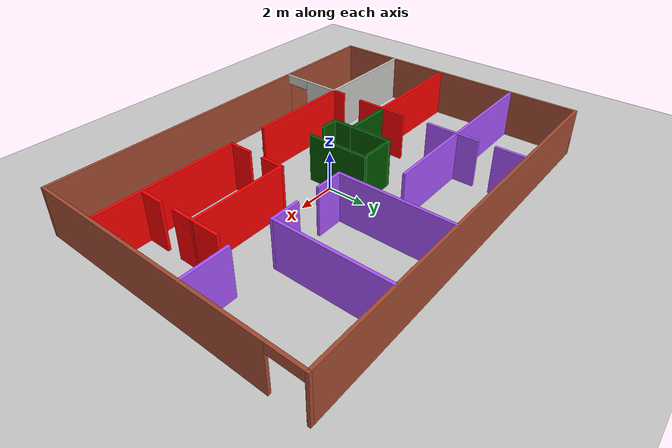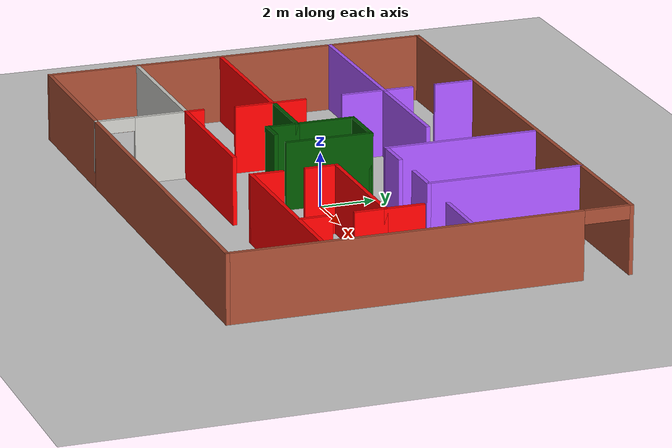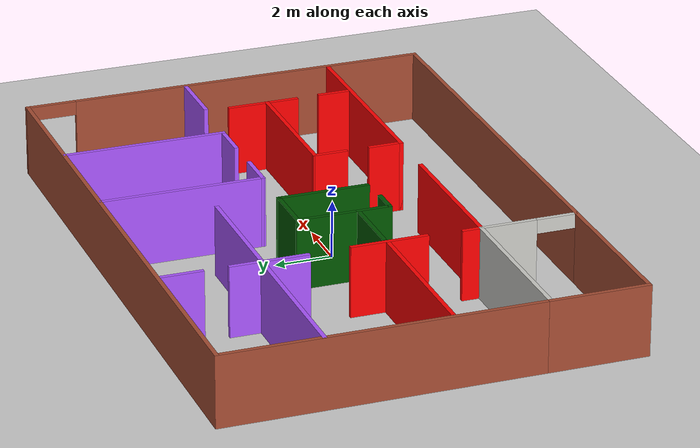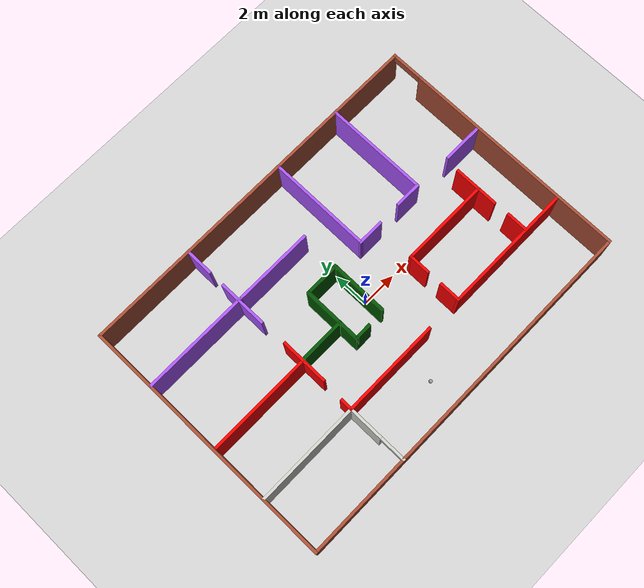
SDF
<sdf version="1.6">
 <world name="default">
  <model name="ground_plane">
   <static>1</static>
   <link name="link">
    <collision name="collision">
     <geometry><plane><normal>0 0 1</normal><size>100 100</size></plane></geometry>
     <surface><friction><ode><mu>100</mu><mu2>50</mu2></ode></friction></surface>
    </collision>
    <visual name="visual">
     <cast_shadows>0</cast_shadows>
     <geometry><plane><normal>0 0 1</normal><size>100 100</size></plane></geometry>
     <material>
      <script><uri>file://media/materials/scripts/gazebo.material</uri><name>Gazebo/Grey</name></script>
     </material>
    </visual>
   </link>
  </model>
  <model name="myhome">
   <pose>-0.1492 0.36301 0 0 -0 0</pose>
   <link name="Wall_0">
    <collision name="Wall_0_Collision">
     <geometry><box><size>11 0.15 2.5</size></box></geometry>
     <pose>0 0 1.25 0 -0 0</pose>
    </collision>
    <visual name="Wall_0_Visual">
     <pose>0 0 1.25 0 -0 0</pose>
     <geometry><box><size>11 0.15 2.5</size></box></geometry>
     <material>
      <script><uri>file://media/materials/scripts/gazebo.material</uri><name>Gazebo/Bricks</name></script>
      <ambient>1 1 1 1</ambient>
     </material>
     <meta><layer>0</layer></meta>
    </visual>
    <pose>-10.175 1.75 0 0 -0 1.5708</pose>
   </link>
   <link name="Wall_1">
    <collision name="Wall_1_Collision">
     <geometry><box><size>20.5 0.15 2.5</size></box></geometry>
     <pose>0 0 1.25 0 -0 0</pose>
    </collision>
    <visual name="Wall_1_Visual">
     <pose>0 0 1.25 0 -0 0</pose>
     <geometry><box><size>20.5 0.15 2.5</size></box></geometry>
     <material>
      <script><uri>file://media/materials/scripts/gazebo.material</uri><name>Gazebo/Bricks</name></script>
      <ambient>1 1 1 1</ambient>
     </material>
     <meta><layer>0</layer></meta>
    </visual>
    <pose>0 7.175 0 0 -0 0</pose>
   </link>
   <link name="Wall_12">
    <collision name="Wall_12_Collision">
     <geometry><box><size>5.75 0.15 2.5</size></box></geometry>
     <pose>0 0 1.25 0 -0 0</pose>
    </collision>
    <visual name="Wall_12_Visual">
     <pose>0 0 1.25 0 -0 0</pose>
     <geometry><box><size>5.75 0.15 2.5</size></box></geometry>
     <material>
      <script><uri>file://media/materials/scripts/gazebo.material</uri><name>Gazebo/Grey</name></script>
      <ambient>0.666667 0.333333 1 1</ambient>
     </material>
     <meta><layer>0</layer></meta>
    </visual>
    <pose>5.80825 4.32699 0 0 0 -1.5708</pose>
   </link>
   <link name="Wall_18">
    <collision name="Wall_18_Collision">
     <geometry><box><size>5.5 0.15 2.5</size></box></geometry>
     <pose>0 0 1.25 0 -0 0</pose>
    </collision>
    <visual name="Wall_18_Visual">
     <pose>0 0 1.25 0 -0 0</pose>
     <geometry><box><size>5.5 0.15 2.5</size></box></geometry>
     <material>
      <script><uri>file://media/materials/scripts/gazebo.material</uri><name>Gazebo/Grey</name></script>
      <ambient>1 0 0 1</ambient>
     </material>
     <meta><layer>0</layer></meta>
    </visual>
    <pose>-1.75 -3.825 0 0 -0 0</pose>
   </link>
   <link name="Wall_2">
    <pose>10.175 0 0 0 0 -1.5708</pose>
    <visual name="Wall_2_Visual_0">
     <pose>-7.17641 0 1.25 0 -0 0</pose>
     <geometry><box><size>0.147184 0.15 2.5</size></box></geometry>
     <material>
      <script><uri>file://media/materials/scripts/gazebo.material</uri><name>Gazebo/Bricks</name></script>
      <ambient>1 1 1 1</ambient>
     </material>
     <meta><layer>0</layer></meta>
    </visual>
    <collision name="Wall_2_Collision_0">
     <geometry><box><size>0.147184 0.15 2.5</size></box></geometry>
     <pose>-7.17641 0 1.25 0 -0 0</pose>
    </collision>
    <visual name="Wall_2_Visual_1">
     <pose>0.893682 0 1.25 0 -0 0</pose>
     <geometry><box><size>12.7126 0.15 2.5</size></box></geometry>
     <material>
      <script><uri>file://media/materials/scripts/gazebo.material</uri><name>Gazebo/Bricks</name></script>
      <ambient>1 1 1 1</ambient>
     </material>
     <meta><layer>0</layer></meta>
    </visual>
    <collision name="Wall_2_Collision_1">
     <geometry><box><size>12.7126 0.15 2.5</size></box></geometry>
     <pose>0.893682 0 1.25 0 -0 0</pose>
    </collision>
    <visual name="Wall_2_Visual_2">
     <pose>-6.28273 0 2.25 0 -0 0</pose>
     <geometry><box><size>1.64018 0.15 0.5</size></box></geometry>
     <material>
      <script><uri>file://media/materials/scripts/gazebo.material</uri><name>Gazebo/Bricks</name></script>
      <ambient>1 1 1 1</ambient>
     </material>
     <meta><layer>0</layer></meta>
    </visual>
    <collision name="Wall_2_Collision_2">
     <geometry><box><size>1.64018 0.15 0.5</size></box></geometry>
     <pose>-6.28273 0 2.25 0 -0 0</pose>
    </collision>
   </link>
   <link name="Wall_20">
    <collision name="Wall_20_Collision">
     <geometry><box><size>7.25 0.15 2.5</size></box></geometry>
     <pose>0 0 1.25 0 -0 0</pose>
    </collision>
    <visual name="Wall_20_Visual">
     <pose>0 0 1.25 0 -0 0</pose>
     <geometry><box><size>7.25 0.15 2.5</size></box></geometry>
     <material>
      <script><uri>file://media/materials/scripts/gazebo.material</uri><name>Gazebo/Grey</name></script>
      <ambient>1 0 0 1</ambient>
     </material>
     <meta><layer>0</layer></meta>
    </visual>
    <pose>6.46692 -3.86004 0 0 -0 0</pose>
   </link>
   <link name="Wall_22">
    <collision name="Wall_22_Collision">
     <geometry><box><size>2.249 0.15 2.5</size></box></geometry>
     <pose>0 0 1.25 0 -0 0</pose>
    </collision>
    <visual name="Wall_22_Visual">
     <pose>0 0 1.25 0 -0 0</pose>
     <geometry><box><size>2.249 0.15 2.5</size></box></geometry>
     <material>
      <script><uri>file://media/materials/scripts/gazebo.material</uri><name>Gazebo/Grey</name></script>
      <ambient>0.666667 0.333333 1 1</ambient>
     </material>
     <meta><layer>0</layer></meta>
    </visual>
    <pose>9.00955 1.43713 0 0 -0 0</pose>
   </link>
   <link name="Wall_3">
    <collision name="Wall_3_Collision">
     <geometry><box><size>14.75 0.15 2.5</size></box></geometry>
     <pose>0 0 1.25 0 -0 0</pose>
    </collision>
    <visual name="Wall_3_Visual">
     <pose>0 0 1.25 0 -0 0</pose>
     <geometry><box><size>14.75 0.15 2.5</size></box></geometry>
     <material>
      <script><uri>file://media/materials/scripts/gazebo.material</uri><name>Gazebo/Bricks</name></script>
      <ambient>1 1 1 1</ambient>
     </material>
     <meta><layer>0</layer></meta>
    </visual>
    <pose>2.875 -7.175 0 0 -0 3.14159</pose>
   </link>
   <link name="Wall_30">
    <collision name="Wall_30_Collision">
     <geometry><box><size>5.75 0.15 2.5</size></box></geometry>
     <pose>0 0 1.25 0 -0 0</pose>
    </collision>
    <visual name="Wall_30_Visual">
     <pose>0 0 1.25 0 -0 0</pose>
     <geometry><box><size>5.75 0.15 2.5</size></box></geometry>
     <material>
      <script><uri>file://media/materials/scripts/gazebo.material</uri><name>Gazebo/Grey</name></script>
      <ambient>1 0 0 1</ambient>
     </material>
     <meta><layer>0</layer></meta>
    </visual>
    <pose>-7.21309 -0.598629 0 0 -0 0</pose>
   </link>
   <link name="Wall_32">
    <collision name="Wall_32_Collision">
     <geometry><box><size>6 0.15 2.5</size></box></geometry>
     <pose>0 0 1.25 0 -0 0</pose>
    </collision>
    <visual name="Wall_32_Visual">
     <pose>0 0 1.25 0 -0 0</pose>
     <geometry><box><size>6 0.15 2.5</size></box></geometry>
     <material>
      <script><uri>file://media/materials/scripts/gazebo.material</uri><name>Gazebo/Grey</name></script>
      <ambient>0.666667 0.333333 1 1</ambient>
     </material>
     <meta><layer>0</layer></meta>
    </visual>
    <pose>-7.22687 3.68053 0 0 -0 0</pose>
   </link>
   <link name="Wall_34">
    <collision name="Wall_34_Collision">
     <geometry><box><size>2.75 0.15 2.5</size></box></geometry>
     <pose>0 0 1.25 0 -0 0</pose>
    </collision>
    <visual name="Wall_34_Visual">
     <pose>0 0 1.25 0 -0 0</pose>
     <geometry><box><size>2.75 0.15 2.5</size></box></geometry>
     <material>
      <script><uri>file://media/materials/scripts/gazebo.material</uri><name>Gazebo/Grey</name></script>
      <ambient>0.666667 0.333333 1 1</ambient>
     </material>
     <meta><layer>0</layer></meta>
    </visual>
    <pose>-4.39439 3.43427 0 0 0 -1.5708</pose>
   </link>
   <link name="Wall_36">
    <collision name="Wall_36_Collision">
     <geometry><box><size>2.7 0.15 2.5</size></box></geometry>
     <pose>0 0 1.25 0 -0 0</pose>
    </collision>
    <visual name="Wall_36_Visual">
     <pose>0 0 1.25 0 -0 0</pose>
     <geometry><box><size>2.7 0.15 2.5</size></box></geometry>
     <material>
      <script><uri>file://media/materials/scripts/gazebo.material</uri><name>Gazebo/Grey</name></script>
      <ambient>1 0 0 1</ambient>
     </material>
     <meta><layer>0</layer></meta>
    </visual>
    <pose>-4.34609 -0.670837 0 0 0 -1.5708</pose>
   </link>
   <link name="Wall_38">
    <collision name="Wall_38_Collision">
     <geometry><box><size>5.75 0.15 2.5</size></box></geometry>
     <pose>0 0 1.25 0 -0 0</pose>
    </collision>
    <visual name="Wall_38_Visual">
     <pose>0 0 1.25 0 -0 0</pose>
     <geometry><box><size>5.75 0.15 2.5</size></box></geometry>
     <material>
      <script><uri>file://media/materials/scripts/gazebo.material</uri><name>Gazebo/Grey</name></script>
      <ambient>0.666667 0.333333 1 1</ambient>
     </material>
     <meta><layer>0</layer></meta>
    </visual>
    <pose>1.76127 4.30479 0 0 0 -1.57115</pose>
   </link>
   <link name="Wall_4">
    <pose>-4.425 -5.5 0 0 -0 1.5708</pose>
    <visual name="Wall_4_Visual_0">
     <pose>-1.68521 0 1.25 0 -0 0</pose>
     <geometry><box><size>0.129586 0.15 2.5</size></box></geometry>
     <material>
      <script><uri>file://media/materials/scripts/gazebo.material</uri><name>Gazebo/CeilingTiled</name></script>
      <ambient>1 0 0 1</ambient>
     </material>
     <meta><layer>0</layer></meta>
    </visual>
    <collision name="Wall_4_Collision_0">
     <geometry><box><size>0.129586 0.15 2.5</size></box></geometry>
     <pose>-1.68521 0 1.25 0 -0 0</pose>
    </collision>
    <visual name="Wall_4_Visual_1">
     <pose>0.746099 0 1.25 0 -0 0</pose>
     <geometry><box><size>2.0078 0.15 2.5</size></box></geometry>
     <material>
      <script><uri>file://media/materials/scripts/gazebo.material</uri><name>Gazebo/CeilingTiled</name></script>
      <ambient>1 0 0 1</ambient>
     </material>
     <meta><layer>0</layer></meta>
    </visual>
    <collision name="Wall_4_Collision_1">
     <geometry><box><size>2.0078 0.15 2.5</size></box></geometry>
     <pose>0.746099 0 1.25 0 -0 0</pose>
    </collision>
    <visual name="Wall_4_Visual_2">
     <pose>-0.939108 0 2.25 0 -0 0</pose>
     <geometry><box><size>1.36261 0.15 0.5</size></box></geometry>
     <material>
      <script><uri>file://media/materials/scripts/gazebo.material</uri><name>Gazebo/CeilingTiled</name></script>
      <ambient>1 0 0 1</ambient>
     </material>
     <meta><layer>0</layer></meta>
    </visual>
    <collision name="Wall_4_Collision_2">
     <geometry><box><size>1.36261 0.15 0.5</size></box></geometry>
     <pose>-0.939108 0 2.25 0 -0 0</pose>
    </collision>
   </link>
   <link name="Wall_40">
    <collision name="Wall_40_Collision">
     <geometry><box><size>4.5 0.15 2.5</size></box></geometry>
     <pose>0 0 1.25 0 -0 0</pose>
    </collision>
    <visual name="Wall_40_Visual">
     <pose>0 0 1.25 0 -0 0</pose>
     <geometry><box><size>4.5 0.15 2.5</size></box></geometry>
     <material>
      <script><uri>file://media/materials/scripts/gazebo.material</uri><name>Gazebo/Grey</name></script>
      <ambient>0.666667 0.333333 1 1</ambient>
     </material>
     <meta><layer>0</layer></meta>
    </visual>
    <pose>-2.12687 3.68053 0 0 -0 0</pose>
   </link>
   <link name="Wall_42">
    <collision name="Wall_42_Collision">
     <geometry><box><size>2.5 0.15 2.5</size></box></geometry>
     <pose>0 0 1.25 0 -0 0</pose>
    </collision>
    <visual name="Wall_42_Visual">
     <pose>0 0 1.25 0 -0 0</pose>
     <geometry><box><size>2.5 0.15 2.5</size></box></geometry>
     <material>
      <script><uri>file://media/materials/scripts/gazebo.material</uri><name>Gazebo/Grey</name></script>
      <ambient>0 0.333333 0 1</ambient>
     </material>
     <meta><layer>0</layer></meta>
    </visual>
    <pose>-2.98604 -0.552368 0 0 -0 0</pose>
   </link>
   <link name="Wall_43">
    <collision name="Wall_43_Collision">
     <geometry><box><size>2.25 0.15 2.5</size></box></geometry>
     <pose>0 0 1.25 0 -0 0</pose>
    </collision>
    <visual name="Wall_43_Visual">
     <pose>0 0 1.25 0 -0 0</pose>
     <geometry><box><size>2.25 0.15 2.5</size></box></geometry>
     <material>
      <script><uri>file://media/materials/scripts/gazebo.material</uri><name>Gazebo/Grey</name></script>
      <ambient>0 0.333333 0 1</ambient>
     </material>
     <meta><layer>0</layer></meta>
    </visual>
    <pose>-1.81104 0.497632 0 0 -0 1.5708</pose>
   </link>
   <link name="Wall_44">
    <collision name="Wall_44_Collision">
     <geometry><box><size>2 0.15 2.5</size></box></geometry>
     <pose>0 0 1.25 0 -0 0</pose>
    </collision>
    <visual name="Wall_44_Visual">
     <pose>0 0 1.25 0 -0 0</pose>
     <geometry><box><size>2 0.15 2.5</size></box></geometry>
     <material>
      <script><uri>file://media/materials/scripts/gazebo.material</uri><name>Gazebo/Grey</name></script>
      <ambient>0 0.333333 0 1</ambient>
     </material>
     <meta><layer>0</layer></meta>
    </visual>
    <pose>-0.886042 1.54763 0 0 -0 0</pose>
   </link>
   <link name="Wall_45">
    <collision name="Wall_45_Collision">
     <geometry><box><size>3.25 0.15 2.5</size></box></geometry>
     <pose>0 0 1.25 0 -0 0</pose>
    </collision>
    <visual name="Wall_45_Visual">
     <pose>0 0 1.25 0 -0 0</pose>
     <geometry><box><size>3.25 0.15 2.5</size></box></geometry>
     <material>
      <script><uri>file://media/materials/scripts/gazebo.material</uri><name>Gazebo/Grey</name></script>
      <ambient>0 0.333333 0 1</ambient>
     </material>
     <meta><layer>0</layer></meta>
    </visual>
    <pose>0.038958 -0.002368 0 0 0 -1.5708</pose>
   </link>
   <link name="Wall_49">
    <collision name="Wall_49_Collision">
     <geometry><box><size>1.25 0.15 2.5</size></box></geometry>
     <pose>0 0 1.25 0 -0 0</pose>
    </collision>
    <visual name="Wall_49_Visual">
     <pose>0 0 1.25 0 -0 0</pose>
     <geometry><box><size>1.25 0.15 2.5</size></box></geometry>
     <material>
      <script><uri>file://media/materials/scripts/gazebo.material</uri><name>Gazebo/Grey</name></script>
      <ambient>0 0.333333 0 1</ambient>
     </material>
     <meta><layer>0</layer></meta>
    </visual>
    <pose>-1.81104 -1.10237 0 0 0 -1.5708</pose>
   </link>
   <link name="Wall_5">
    <collision name="Wall_5_Collision">
     <geometry><box><size>5.89995 0.15 2.5</size></box></geometry>
     <pose>0 0 1.25 0 -0 0</pose>
    </collision>
    <visual name="Wall_5_Visual">
     <pose>0 0 1.25 0 -0 0</pose>
     <geometry><box><size>5.89995 0.15 2.5</size></box></geometry>
     <material>
      <script><uri>file://media/materials/scripts/gazebo.material</uri><name>Gazebo/CeilingTiled</name></script>
      <ambient>1 0 0 1</ambient>
     </material>
     <meta><layer>0</layer></meta>
    </visual>
    <pose>-7.29998 -3.82493 0 0 -0 3.14157</pose>
   </link>
   <link name="Wall_50">
    <collision name="Wall_50_Collision">
     <geometry><box><size>1 0.15 2.5</size></box></geometry>
     <pose>0 0 1.25 0 -0 0</pose>
    </collision>
    <visual name="Wall_50_Visual">
     <pose>0 0 1.25 0 -0 0</pose>
     <geometry><box><size>1 0.15 2.5</size></box></geometry>
     <material>
      <script><uri>file://media/materials/scripts/gazebo.material</uri><name>Gazebo/Grey</name></script>
      <ambient>0 0.333333 0 1</ambient>
     </material>
     <meta><layer>0</layer></meta>
    </visual>
    <pose>-1.38604 -1.65237 0 0 -0 0</pose>
   </link>
   <link name="Wall_53">
    <collision name="Wall_53_Collision">
     <geometry><box><size>5 0.15 2.5</size></box></geometry>
     <pose>0 0 1.25 0 -0 0</pose>
    </collision>
    <visual name="Wall_53_Visual">
     <pose>0 0 1.25 0 -0 0</pose>
     <geometry><box><size>5 0.15 2.5</size></box></geometry>
     <material>
      <script><uri>file://media/materials/scripts/gazebo.material</uri><name>Gazebo/Grey</name></script>
      <ambient>1 0 0 1</ambient>
     </material>
     <meta><layer>0</layer></meta>
    </visual>
    <pose>5.34192 -0.760045 0 0 -0 0</pose>
   </link>
   <link name="Wall_54">
    <collision name="Wall_54_Collision">
     <geometry><box><size>1.5 0.15 2.5</size></box></geometry>
     <pose>0 0 1.25 0 -0 0</pose>
    </collision>
    <visual name="Wall_54_Visual">
     <pose>0 0 1.25 0 -0 0</pose>
     <geometry><box><size>1.5 0.15 2.5</size></box></geometry>
     <material>
      <script><uri>file://media/materials/scripts/gazebo.material</uri><name>Gazebo/Grey</name></script>
      <ambient>1 0 0 1</ambient>
     </material>
     <meta><layer>0</layer></meta>
    </visual>
    <pose>7.76692 -0.085045 0 0 -0 1.5708</pose>
   </link>
   <link name="Wall_56">
    <collision name="Wall_56_Collision">
     <geometry><box><size>1.5 0.15 2.5</size></box></geometry>
     <pose>0 0 1.25 0 -0 0</pose>
    </collision>
    <visual name="Wall_56_Visual">
     <pose>0 0 1.25 0 -0 0</pose>
     <geometry><box><size>1.5 0.15 2.5</size></box></geometry>
     <material>
      <script><uri>file://media/materials/scripts/gazebo.material</uri><name>Gazebo/Grey</name></script>
      <ambient>0.666667 0.333333 1 1</ambient>
     </material>
     <meta><layer>0</layer></meta>
    </visual>
    <pose>2.43527 1.50479 0 0 -0 0</pose>
   </link>
   <link name="Wall_58">
    <collision name="Wall_58_Collision">
     <geometry><box><size>1.5 0.15 2.5</size></box></geometry>
     <pose>0 0 1.25 0 -0 0</pose>
    </collision>
    <visual name="Wall_58_Visual">
     <pose>0 0 1.25 0 -0 0</pose>
     <geometry><box><size>1.5 0.15 2.5</size></box></geometry>
     <material>
      <script><uri>file://media/materials/scripts/gazebo.material</uri><name>Gazebo/Grey</name></script>
      <ambient>0.666667 0.333333 1 1</ambient>
     </material>
     <meta><layer>0</layer></meta>
    </visual>
    <pose>5.13325 1.52699 0 0 -0 3.14159</pose>
   </link>
   <link name="Wall_6">
    <collision name="Wall_6_Collision">
     <geometry><box><size>3.5 0.15 2.5</size></box></geometry>
     <pose>0 0 1.25 0 -0 0</pose>
    </collision>
    <visual name="Wall_6_Visual">
     <pose>0 0 1.25 0 -0 0</pose>
     <geometry><box><size>3.5 0.15 2.5</size></box></geometry>
     <material>
      <script><uri>file://media/materials/scripts/gazebo.material</uri><name>Gazebo/Bricks</name></script>
      <ambient>1 1 1 1</ambient>
     </material>
     <meta><layer>0</layer></meta>
    </visual>
    <pose>-10.175 -5.49987 0 0 0 -1.5708</pose>
   </link>
   <link name="Wall_60">
    <collision name="Wall_60_Collision">
     <geometry><box><size>1.5 0.15 2.5</size></box></geometry>
     <pose>0 0 1.25 0 -0 0</pose>
    </collision>
    <visual name="Wall_60_Visual">
     <pose>0 0 1.25 0 -0 0</pose>
     <geometry><box><size>1.5 0.15 2.5</size></box></geometry>
     <material>
      <script><uri>file://media/materials/scripts/gazebo.material</uri><name>Gazebo/Grey</name></script>
      <ambient>0.666667 0.333333 1 1</ambient>
     </material>
     <meta><layer>0</layer></meta>
    </visual>
    <pose>-4.39235 6.3826 0 0 0 -1.5708</pose>
   </link>
   <link name="Wall_62">
    <collision name="Wall_62_Collision">
     <geometry><box><size>0.75 0.15 2.5</size></box></geometry>
     <pose>0 0 1.25 0 -0 0</pose>
    </collision>
    <visual name="Wall_62_Visual">
     <pose>0 0 1.25 0 -0 0</pose>
     <geometry><box><size>0.75 0.15 2.5</size></box></geometry>
     <material>
      <script><uri>file://media/materials/scripts/gazebo.material</uri><name>Gazebo/Grey</name></script>
      <ambient>1 0 0 1</ambient>
     </material>
     <meta><layer>0</layer></meta>
    </visual>
    <pose>-4.425 -3.525 0 0 -0 1.5708</pose>
   </link>
   <link name="Wall_64">
    <collision name="Wall_64_Collision">
     <geometry><box><size>1.2 0.15 2.5</size></box></geometry>
     <pose>0 0 1.25 0 -0 0</pose>
    </collision>
    <visual name="Wall_64_Visual">
     <pose>0 0 1.25 0 -0 0</pose>
     <geometry><box><size>1.2 0.15 2.5</size></box></geometry>
     <material>
      <script><uri>file://media/materials/scripts/gazebo.material</uri><name>Gazebo/Grey</name></script>
      <ambient>1 0 0 1</ambient>
     </material>
     <meta><layer>0</layer></meta>
    </visual>
    <pose>7.76692 -1.28504 0 0 0 -1.5708</pose>
   </link>
   <link name="Wall_66">
    <collision name="Wall_66_Collision">
     <geometry><box><size>1.2 0.15 2.5</size></box></geometry>
     <pose>0 0 1.25 0 -0 0</pose>
    </collision>
    <visual name="Wall_66_Visual">
     <pose>0 0 1.25 0 -0 0</pose>
     <geometry><box><size>1.2 0.15 2.5</size></box></geometry>
     <material>
      <script><uri>file://media/materials/scripts/gazebo.material</uri><name>Gazebo/Grey</name></script>
      <ambient>1 0 0 1</ambient>
     </material>
     <meta><layer>0</layer></meta>
    </visual>
    <pose>7.79748 -3.25164 0 0 0 -1.5708</pose>
   </link>
   <link name="Wall_68">
    <collision name="Wall_68_Collision">
     <geometry><box><size>1.25 0.15 2.5</size></box></geometry>
     <pose>0 0 1.25 0 -0 0</pose>
    </collision>
    <visual name="Wall_68_Visual">
     <pose>0 0 1.25 0 -0 0</pose>
     <geometry><box><size>1.25 0.15 2.5</size></box></geometry>
     <material>
      <script><uri>file://media/materials/scripts/gazebo.material</uri><name>Gazebo/Grey</name></script>
      <ambient>1 0 0 1</ambient>
     </material>
     <meta><layer>0</layer></meta>
    </visual>
    <pose>2.91692 -1.31004 0 0 0 -1.5708</pose>
   </link>
   <link name="Wall_70">
    <collision name="Wall_70_Collision">
     <geometry><box><size>1.25 0.15 2.5</size></box></geometry>
     <pose>0 0 1.25 0 -0 0</pose>
    </collision>
    <visual name="Wall_70_Visual">
     <pose>0 0 1.25 0 -0 0</pose>
     <geometry><box><size>1.25 0.15 2.5</size></box></geometry>
     <material>
      <script><uri>file://media/materials/scripts/gazebo.material</uri><name>Gazebo/Grey</name></script>
      <ambient>1 0 0 1</ambient>
     </material>
     <meta><layer>0</layer></meta>
    </visual>
    <pose>2.91692 -3.31005 0 0 -0 1.5708</pose>
   </link>
   <link name="Wall_9">
    <collision name="Wall_9_Collision">
     <geometry><box><size>5.75 0.15 2.5</size></box></geometry>
     <pose>0 0 1.25 0 -0 0</pose>
    </collision>
    <visual name="Wall_9_Visual">
     <pose>0 0 1.25 0 -0 0</pose>
     <geometry><box><size>5.75 0.15 2.5</size></box></geometry>
     <material>
      <script><uri>file://media/materials/scripts/gazebo.material</uri><name>Gazebo/Bricks</name></script>
      <ambient>1 1 1 1</ambient>
     </material>
     <meta><layer>0</layer></meta>
    </visual>
    <pose>-7.225 -7.175 0 0 -0 3.14159</pose>
   </link>
   <static>1</static>
  </model>
  <model name="my_ball">
   <link name="link_0">
    <inertial>
     <mass>1</mass>
     <inertia><ixx>0.1</ixx><ixy>0</ixy><ixz>0</ixz><iyy>0.1</iyy><iyz>0</iyz><izz>0.1</izz></inertia>
    </inertial>
    <visual name="visual">
     <geometry><sphere><radius>0.1</radius></sphere></geometry>
     <material>
      <lighting>1</lighting>
      <script><uri>file://media/materials/scripts/gazebo.material</uri><name>Gazebo/Grey</name></script>
      <shader type="pixel"><normal_map>__default__</normal_map></shader>
      <ambient>1 1 1 1</ambient>
      <diffuse>1 1 1 1</diffuse>
      <specular>0.01 0.01 0.01 1</specular>
      <emissive>1 1 1 1</emissive>
     </material>
    </visual>
    <collision name="collision">
     <geometry><sphere><radius>0.1</radius></sphere></geometry>
     <surface>
      <friction>
       <ode><mu>1</mu><mu2>1</mu2><fdir1>0 0 0</fdir1><slip1>0</slip1><slip2>0</slip2></ode>
       <torsional>
        <coefficient>1</coefficient>
        <patch_radius>0</patch_radius>
        <surface_radius>0</surface_radius>
        <use_patch_radius>1</use_patch_radius>
        <ode><slip>0</slip></ode>
       </torsional>
      </friction>
      <bounce><restitution_coefficient>0</restitution_coefficient><threshold>1e+06</threshold></bounce>
      <contact>
       <collide_without_contact>0</collide_without_contact>
       <collide_without_contact_bitmask>1</collide_without_contact_bitmask>
       <collide_bitmask>1</collide_bitmask>
       <ode>
        <soft_cfm>0</soft_cfm>
        <soft_erp>0.2</soft_erp>
        <kp>1e+13</kp>
        <kd>1</kd>
        <max_vel>0.01</max_vel>
        <min_depth>0</min_depth>
       </ode>
       <bullet>
        <split_impulse>1</split_impulse>
        <split_impulse_penetration_threshold>-0.01</split_impulse_penetration_threshold>
        <soft_cfm>0</soft_cfm>
        <soft_erp>0.2</soft_erp>
        <kp>1e+13</kp>
        <kd>1</kd>
       </bullet>
      </contact>
     </surface>
    </collision>
   </link>
   <static>0</static>
   <pose>-0.631326 -5.06522 0.1 0 -0 0</pose>
  </model>
 </world>
</sdf>
